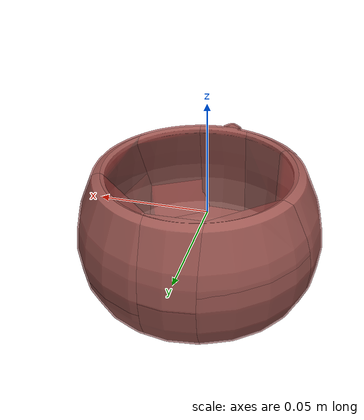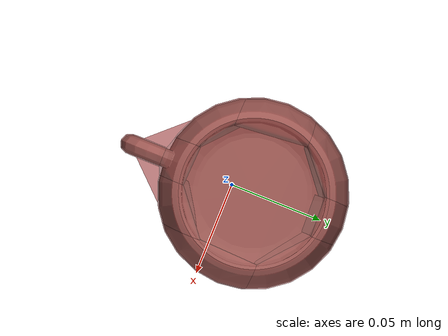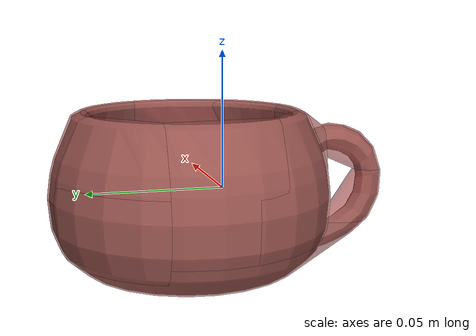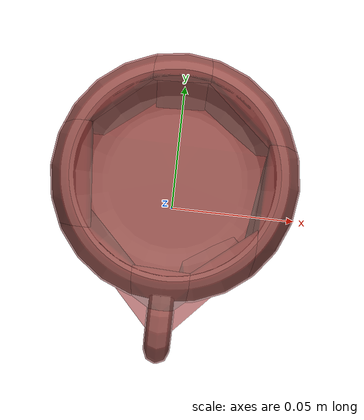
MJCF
<mujoco model="mug_67">
  <asset>
    <mesh file="visual/model_normalized_0.obj" name="model_normalized_0_vis" scale="0.125 0.125 0.125" refquat="0.7071067811865475 0.0 0.0 0.7071067811865476"/>
    <texture type="2d" name="image0" file="visual/image0.png"/>
    <material name="Subajelly_material" texture="image0" specular="0.5" shininess="0.006280824"/>
    <mesh file="collision/collision_mesh_collision_0.obj" name="mug_collision_mesh_0" scale="0.125 0.125 0.125" refquat="0.7071067811865475 0.0 0.0 0.7071067811865476"/>
    <mesh file="collision/collision_mesh_collision_1.obj" name="mug_collision_mesh_1" scale="0.125 0.125 0.125" refquat="0.7071067811865475 0.0 0.0 0.7071067811865476"/>
    <mesh file="collision/collision_mesh_collision_2.obj" name="mug_collision_mesh_2" scale="0.125 0.125 0.125" refquat="0.7071067811865475 0.0 0.0 0.7071067811865476"/>
    <mesh file="collision/collision_mesh_collision_3.obj" name="mug_collision_mesh_3" scale="0.125 0.125 0.125" refquat="0.7071067811865475 0.0 0.0 0.7071067811865476"/>
    <mesh file="collision/collision_mesh_collision_4.obj" name="mug_collision_mesh_4" scale="0.125 0.125 0.125" refquat="0.7071067811865475 0.0 0.0 0.7071067811865476"/>
    <mesh file="collision/collision_mesh_collision_5.obj" name="mug_collision_mesh_5" scale="0.125 0.125 0.125" refquat="0.7071067811865475 0.0 0.0 0.7071067811865476"/>
    <mesh file="collision/collision_mesh_collision_6.obj" name="mug_collision_mesh_6" scale="0.125 0.125 0.125" refquat="0.7071067811865475 0.0 0.0 0.7071067811865476"/>
    <mesh file="collision/collision_mesh_collision_7.obj" name="mug_collision_mesh_7" scale="0.125 0.125 0.125" refquat="0.7071067811865475 0.0 0.0 0.7071067811865476"/>
    <mesh file="collision/collision_mesh_collision_8.obj" name="mug_collision_mesh_8" scale="0.125 0.125 0.125" refquat="0.7071067811865475 0.0 0.0 0.7071067811865476"/>
    <mesh file="collision/collision_mesh_collision_9.obj" name="mug_collision_mesh_9" scale="0.125 0.125 0.125" refquat="0.7071067811865475 0.0 0.0 0.7071067811865476"/>
    <mesh file="collision/collision_mesh_collision_10.obj" name="mug_collision_mesh_10" scale="0.125 0.125 0.125" refquat="0.7071067811865475 0.0 0.0 0.7071067811865476"/>
    <mesh file="collision/collision_mesh_collision_11.obj" name="mug_collision_mesh_11" scale="0.125 0.125 0.125" refquat="0.7071067811865475 0.0 0.0 0.7071067811865476"/>
    <mesh file="collision/collision_mesh_collision_12.obj" name="mug_collision_mesh_12" scale="0.125 0.125 0.125" refquat="0.7071067811865475 0.0 0.0 0.7071067811865476"/>
    <mesh file="collision/collision_mesh_collision_13.obj" name="mug_collision_mesh_13" scale="0.125 0.125 0.125" refquat="0.7071067811865475 0.0 0.0 0.7071067811865476"/>
    <mesh file="collision/collision_mesh_collision_14.obj" name="mug_collision_mesh_14" scale="0.125 0.125 0.125" refquat="0.7071067811865475 0.0 0.0 0.7071067811865476"/>
    <mesh file="collision/collision_mesh_collision_15.obj" name="mug_collision_mesh_15" scale="0.125 0.125 0.125" refquat="0.7071067811865475 0.0 0.0 0.7071067811865476"/>
  </asset>
  <default>
    <default class="region">
      <geom group="1" conaffinity="0" contype="0" rgba="0 1 0 0"/>
    </default>
    <default class="collision">
      <geom group="0" rgba="0.5 0 0 0.5" density="1000.0"/>
    </default>
  </default>
  <worldbody>
    <body>
      <body name="object">
        <geom solimp="0.998 0.998 0.001" solref="0.001 1" density="100" friction="0.95 0.3 0.1" type="mesh" mesh="model_normalized_0_vis" conaffinity="0" contype="0" group="1" material="Subajelly_material"/>
        <geom class="region" name="reg_bbox" type="box" pos="9.087500000004578e-07 6.477562500000617e-05 -9.975125000000022e-05" size="0.05091633625 0.062973074375 0.029248022499999998"/>
        <geom mesh="mug_collision_mesh_0" type="mesh" class="collision"/>
        <geom mesh="mug_collision_mesh_1" type="mesh" class="collision"/>
        <geom mesh="mug_collision_mesh_2" type="mesh" class="collision"/>
        <geom mesh="mug_collision_mesh_3" type="mesh" class="collision"/>
        <geom mesh="mug_collision_mesh_4" type="mesh" class="collision"/>
        <geom mesh="mug_collision_mesh_5" type="mesh" class="collision"/>
        <geom mesh="mug_collision_mesh_6" type="mesh" class="collision"/>
        <geom mesh="mug_collision_mesh_7" type="mesh" class="collision"/>
        <geom mesh="mug_collision_mesh_8" type="mesh" class="collision"/>
        <geom mesh="mug_collision_mesh_9" type="mesh" class="collision"/>
        <geom mesh="mug_collision_mesh_10" type="mesh" class="collision"/>
        <geom mesh="mug_collision_mesh_11" type="mesh" class="collision"/>
        <geom mesh="mug_collision_mesh_12" type="mesh" class="collision"/>
        <geom mesh="mug_collision_mesh_13" type="mesh" class="collision"/>
        <geom mesh="mug_collision_mesh_14" type="mesh" class="collision"/>
        <geom mesh="mug_collision_mesh_15" type="mesh" class="collision"/>
        <geom rgba="0 0 0 0" size="0.038 0.02" pos="0 0.015 0.002" type="cylinder" name="liquid" class="region"/>
        <geom rgba="0 0 0 0 " size="0.044 0.044 0.025" pos="0 0.012 0.002" type="ellipsoid" name="reg_int" class="region"/>
      </body>
    </body>
  </worldbody>
</mujoco>
